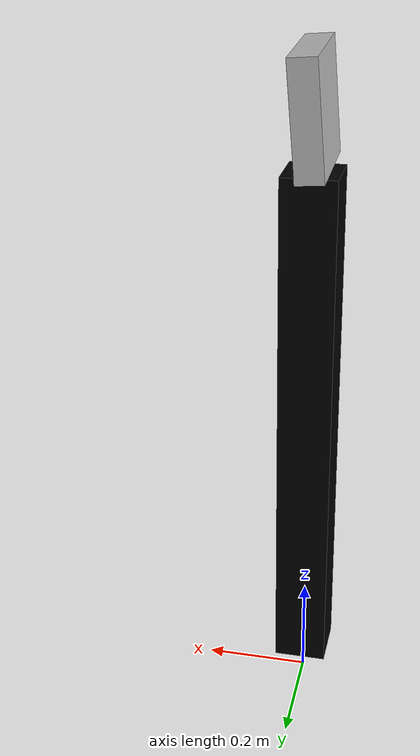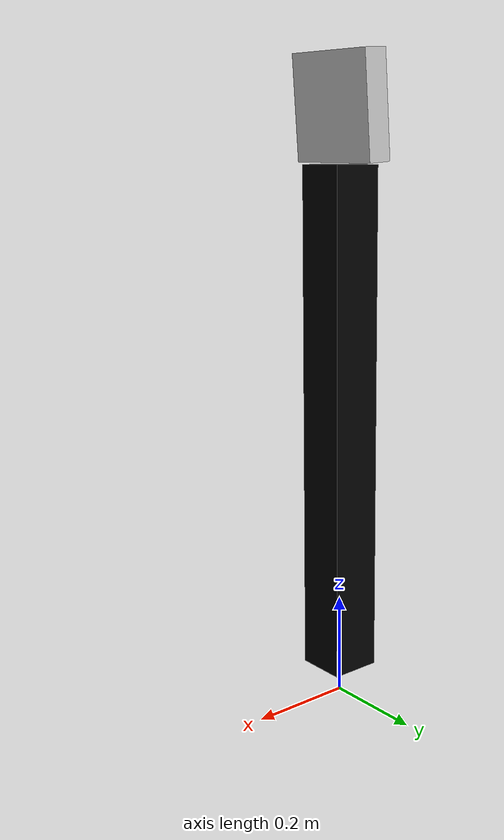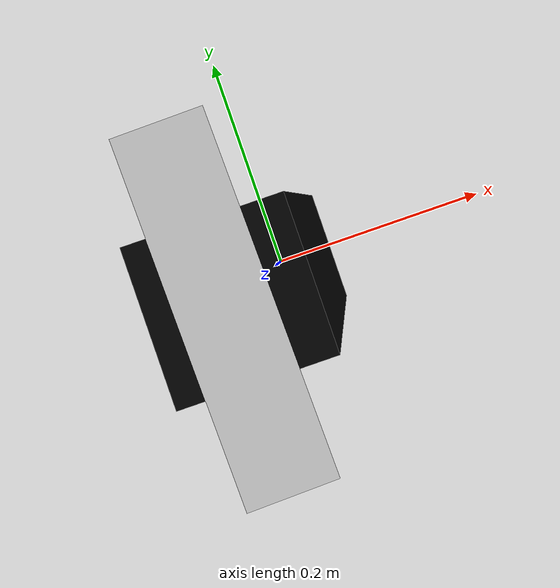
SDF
<?xml version='1.0'?>
<sdf version='1.5'>
  <model name='tag5_w_holder'>
    <static>true</static>
    <link name="tag5_w_holder_link">

        <visual name="visual_tag5_w_holder">
        <geometry>
                <mesh>
                    <uri>model://Tag_w_holder/meshes/tag5_w_holder.dae</uri>
                </mesh>
            </geometry>
        </visual>
         <collision name="collision_ar_tag5">
                <geometry>
                <mesh>
                    <uri>model://Tag_w_holder/meshes/tag5_w_holder.dae</uri>
                </mesh>
            </geometry>
        </collision>

    </link>
  </model>
</sdf>
~
